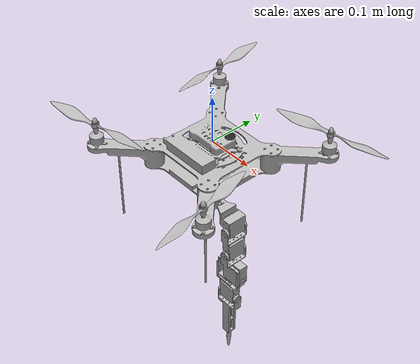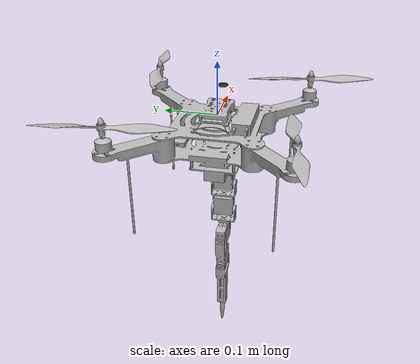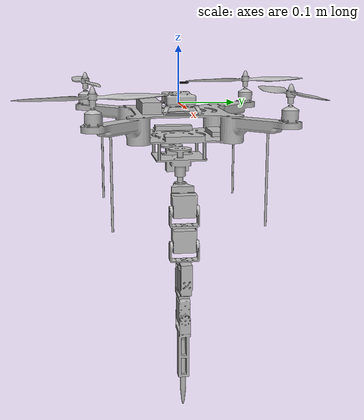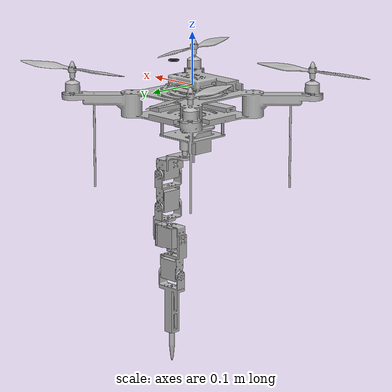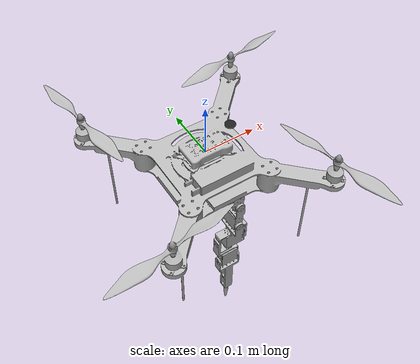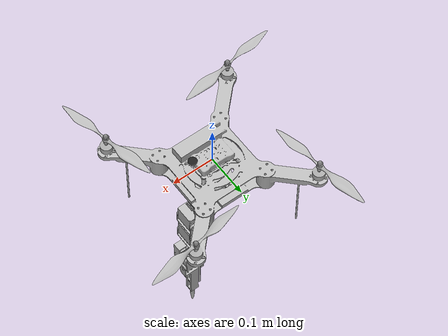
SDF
<sdf version='1.7'>
  <model name='hyper_robot4'>
    <link name='base_link'>
      <inertial>
        <pose>-0.000803 -0.007314 -0.027846 0 -0 0</pose>
        <mass>1.4</mass>
        <inertia>
          <ixx>0.0017764</ixx>
          <ixy>-3.447e-06</ixy>
          <ixz>2.1856e-07</ixz>
          <iyy>0.0019607</iyy>
          <iyz>2.7013e-07</iyz>
          <izz>0.0032525</izz>
        </inertia>
      </inertial>
      <collision name='base_link_collision'>
        <pose>0 0 -0.1 0 -0 0</pose>
        <geometry>
          <box>
            <size>0.4 0.4 0.2</size>
          </box>
        </geometry>
      </collision>
      <visual name='base_link_visual'>
        <pose>0 0 0 0 -0 0</pose>
        <geometry>
          <mesh>
            <scale>1 1 1</scale>
            <uri>model://hyper_robot4/meshes/base_link.STL</uri>
          </mesh>
        </geometry>
      </visual>
    </link>
    <joint name='/imu_joint' type='revolute'>
      <pose relative_to='base_link'>0 0 0 0 -0 0</pose>
      <parent>base_link</parent>
      <child>/imu_link</child>
      <axis>
        <xyz>0 0 1</xyz>
        <limit>
          <lower>0</lower>
          <upper>0</upper>
          <effort>0</effort>
          <velocity>0</velocity>
        </limit>
        <dynamics>
          <spring_reference>0</spring_reference>
          <spring_stiffness>0</spring_stiffness>
        </dynamics>
      </axis>
    </joint>
    <link name='/imu_link'>
      <pose relative_to='/imu_joint'>0 0 0 0 -0 0</pose>
      <inertial>
        <pose>0 0 0 0 -0 0</pose>
        <mass>0.015</mass>
        <inertia>
          <ixx>1e-05</ixx>
          <ixy>0</ixy>
          <ixz>0</ixz>
          <iyy>0</iyy>
          <iyz>0</iyz>
          <izz>0</izz>
        </inertia>
      </inertial>
    </link>
    <joint name='Joint0' type='revolute'>
      <pose relative_to='base_link'>0.02 0 -0.18065 0 -0 0</pose>
      <parent>base_link</parent>
      <child>Link1</child>
      <axis>
        <xyz>0 0 1</xyz>
        <limit>
          <lower>-1.5707</lower>
          <upper>1.5707</upper>
          <effort>1</effort>
          <velocity>1</velocity>
        </limit>
        <dynamics>
          <damping>0.01</damping>
          <friction>0</friction>
          <spring_reference>0</spring_reference>
          <spring_stiffness>0</spring_stiffness>
        </dynamics>
      </axis>
    </joint>
    <link name='Link1'>
      <pose relative_to='Joint0'>0 0 0 0 -0 0</pose>
      <inertial>
        <pose>0.03091 3.5e-05 0.029993 0 -0 0</pose>
        <mass>0.11138</mass>
        <inertia>
          <ixx>2.6005e-05</ixx>
          <ixy>-2.14e-13</ixy>
          <ixz>2.8039e-07</ixz>
          <iyy>1.7177e-05</iyy>
          <iyz>3.7239e-08</iyz>
          <izz>1.71e-05</izz>
        </inertia>
      </inertial>
      <visual name='Link1_visual'>
        <pose>0 0 0 0 -0 0</pose>
        <geometry>
          <mesh>
            <scale>1 1 1</scale>
            <uri>model://hyper_robot4/meshes/Link1.STL</uri>
          </mesh>
        </geometry>
      </visual>
    </link>
    <joint name='Joint1' type='revolute'>
      <pose relative_to='Link1'>0.0465 0 0 1.5708 1.5708 0</pose>
      <parent>Link1</parent>
      <child>Link2</child>
      <axis>
        <xyz>0 0 1</xyz>
        <limit>
          <lower>-1.5707</lower>
          <upper>1.5707</upper>
          <effort>1</effort>
          <velocity>1</velocity>
        </limit>
        <dynamics>
          <damping>0.01</damping>
          <friction>0</friction>
          <spring_reference>0</spring_reference>
          <spring_stiffness>0</spring_stiffness>
        </dynamics>
      </axis>
    </joint>
    <link name='Link2'>
      <pose relative_to='Joint1'>0 0 0 0 -0 0</pose>
      <inertial>
        <pose>0.044669 -0 -8e-06 0 -0 0</pose>
        <mass>0.089477</mass>
        <inertia>
          <ixx>1.9359e-05</ixx>
          <ixy>3.3333e-19</ixy>
          <ixz>3.7239e-08</ixz>
          <iyy>2.6927e-05</iyy>
          <iyz>3.7967e-21</iyz>
          <izz>1.3371e-05</izz>
        </inertia>
      </inertial>
      <visual name='Link2_visual'>
        <pose>0 0 0 0 -0 0</pose>
        <geometry>
          <mesh>
            <scale>1 1 1</scale>
            <uri>model://hyper_robot4/meshes/Link2.STL</uri>
          </mesh>
        </geometry>
      </visual>
    </link>
    <joint name='Joint2' type='revolute'>
      <pose relative_to='Link2'>0.06365 0 0 0 0 -1.5708</pose>
      <parent>Link2</parent>
      <child>Link3</child>
      <axis>
        <xyz>0 0 -1</xyz>
        <limit>
          <lower>-1.5707</lower>
          <upper>1.5707</upper>
          <effort>1</effort>
          <velocity>1</velocity>
        </limit>
        <dynamics>
          <damping>0.01</damping>
          <friction>0</friction>
          <spring_reference>0</spring_reference>
          <spring_stiffness>0</spring_stiffness>
        </dynamics>
      </axis>
    </joint>
    <link name='Link3'>
      <pose relative_to='Joint2'>0 0 0 0 -0 0</pose>
      <inertial>
        <pose>-0.002764 0.053128 3.4e-05 0 -0 0</pose>
        <mass>0.09428</mass>
        <inertia>
          <ixx>2.1264e-05</ixx>
          <ixy>4.9299e-07</ixy>
          <ixz>3.2007e-18</ixz>
          <iyy>1.7761e-05</iyy>
          <iyz>-5.2408e-19</iyz>
          <izz>2.4231e-05</izz>
        </inertia>
      </inertial>
      <visual name='Link3_visual'>
        <pose>0 0 0 0 -0 0</pose>
        <geometry>
          <mesh>
            <scale>1 1 1</scale>
            <uri>model://hyper_robot4/meshes/Link3.STL</uri>
          </mesh>
        </geometry>
      </visual>
    </link>
    <joint name='Joint3' type='revolute'>
      <pose relative_to='Link3'>0.00965 0.13565 0 1.57079 -1.57079 3.14159</pose>
      <parent>Link3</parent>
      <child>Link4</child>
      <axis>
        <xyz>0 0 1</xyz>
        <limit>
          <lower>-1.5707</lower>
          <upper>1.5707</upper>
          <effort>1</effort>
          <velocity>1</velocity>
        </limit>
        <dynamics>
          <damping>0.01</damping>
          <friction>0</friction>
          <spring_reference>0</spring_reference>
          <spring_stiffness>0</spring_stiffness>
        </dynamics>
      </axis>
    </joint>
    <link name='Link4'>
      <pose relative_to='Joint3'>0 0 0 0 -0 0</pose>
      <inertial>
        <pose>0 0.003126 -0.024086 0 -0 0</pose>
        <mass>0.09428</mass>
        <inertia>
          <ixx>2.8558e-05</ixx>
          <ixy>-5.4321e-20</ixy>
          <ixz>1.1994e-18</ixz>
          <iyy>1.7996e-05</iyy>
          <iyz>4.1851e-07</iyz>
          <izz>1.6701e-05</izz>
        </inertia>
      </inertial>
      <visual name='Link4_visual'>
        <pose>0 0 0 0 -0 0</pose>
        <geometry>
          <mesh>
            <scale>1 1 1</scale>
            <uri>model://hyper_robot4/meshes/Link4.STL</uri>
          </mesh>
        </geometry>
      </visual>
    </link>
    <joint name='Joint4' type='revolute'>
      <pose relative_to='Link4'>0 0 0 1.5708 -0 0</pose>
      <parent>Link4</parent>
      <child>Link5</child>
      <axis>
        <xyz>0 0 1</xyz>
        <limit>
          <lower>-1.5707</lower>
          <upper>1.5707</upper>
          <effort>1</effort>
          <velocity>1</velocity>
        </limit>
        <dynamics>
          <damping>0.01</damping>
          <friction>0</friction>
          <spring_reference>0</spring_reference>
          <spring_stiffness>0</spring_stiffness>
        </dynamics>
      </axis>
    </joint>
    <link name='Link5'>
      <pose relative_to='Joint4'>0 0 0 0 -0 0</pose>
      <inertial>
        <pose>-0 0.057083 6.6e-05 0 -0 0</pose>
        <mass>0.0488669</mass>
        <inertia>
          <ixx>7.18439e-05</ixx>
          <ixy>2.90795e-11</ixy>
          <ixz>1.53411e-13</ixz>
          <iyy>8.24828e-06</iyy>
          <iyz>4.17585e-08</iyz>
          <izz>6.70449e-05</izz>
        </inertia>
      </inertial>
      <visual name='Link5_visual'>
        <pose>0 0 0 0 -0 0</pose>
        <geometry>
          <mesh>
            <scale>1 1 1</scale>
            <uri>model://hyper_robot4/meshes/Link5.STL</uri>
          </mesh>
        </geometry>
      </visual>
      <visual name='Link5_fixed_joint_lump__Link6_visual_1'>
        <pose>0 0.177385 0 -1.5708 0 0</pose>
        <geometry>
          <mesh>
            <scale>1 1 1</scale>
            <uri>model://hyper_robot4/meshes/Link6.STL</uri>
          </mesh>
        </geometry>
      </visual>
    </link>
    <joint name='rotor_0_joint' type='revolute'>
      <pose relative_to='base_link'>0.15778 -0.15778 0.022914 0 -0 0</pose>
      <parent>base_link</parent>
      <child>rotor_0</child>
      <axis>
        <xyz>0 0 1</xyz>
        <limit>
          <lower>-1e+16</lower>
          <upper>1e+16</upper>
        </limit>
        <dynamics>
          <spring_reference>0</spring_reference>
          <spring_stiffness>0</spring_stiffness>
        </dynamics>
      </axis>
    </joint>
    <link name='rotor_0'>
      <pose relative_to='rotor_0_joint'>0 0 0 0 -0 0</pose>
      <inertial>
        <pose>0 -0.004483 -0 -1.5708 0 1.7863</pose>
        <mass>0.022944</mass>
        <inertia>
          <ixx>8.117e-07</ixx>
          <ixy>-1.5304e-17</ixy>
          <ixz>2.5395e-06</ixz>
          <iyy>9.7213e-05</iyy>
          <iyz>2.8509e-18</iyz>
          <izz>9.6561e-05</izz>
        </inertia>
      </inertial>
      <visual name='rotor_0_visual'>
        <pose>0 0 0 -1.5708 0 1.7863</pose>
        <geometry>
          <mesh>
            <scale>1 1 1</scale>
            <uri>model://hyper_robot4/meshes/rotor0.STL</uri>
          </mesh>
        </geometry>
      </visual>
    </link>
    <joint name='rotor_1_joint' type='revolute'>
      <pose relative_to='base_link'>-0.15778 0.15778 0.022914 0 -0 0</pose>
      <parent>base_link</parent>
      <child>rotor_1</child>
      <axis>
        <xyz>0 0 1</xyz>
        <limit>
          <lower>-1e+16</lower>
          <upper>1e+16</upper>
        </limit>
        <dynamics>
          <spring_reference>0</spring_reference>
          <spring_stiffness>0</spring_stiffness>
        </dynamics>
      </axis>
    </joint>
    <link name='rotor_1'>
      <pose relative_to='rotor_1_joint'>0 0 0 0 -0 0</pose>
      <inertial>
        <pose>-0 -0.004483 0 -1.5708 -0 1.7179</pose>
        <mass>0.022944</mass>
        <inertia>
          <ixx>8.1171e-07</ixx>
          <ixy>4.1874e-14</ixy>
          <ixz>2.5395e-06</ixz>
          <iyy>9.7213e-05</iyy>
          <iyz>-1.6511e-14</iyz>
          <izz>9.6562e-05</izz>
        </inertia>
      </inertial>
      <visual name='rotor_1_visual'>
        <pose>0 0 0 -1.5708 -0 1.7179</pose>
        <geometry>
          <mesh>
            <scale>1 1 1</scale>
            <uri>model://hyper_robot4/meshes/rotor1.STL</uri>
          </mesh>
        </geometry>
      </visual>
    </link>
    <joint name='rotor_2_joint' type='revolute'>
      <pose relative_to='base_link'>0.15778 0.15778 0.0245 0 -0 0</pose>
      <parent>base_link</parent>
      <child>rotor_2</child>
      <axis>
        <xyz>0 0 1</xyz>
        <limit>
          <lower>-1e+16</lower>
          <upper>1e+16</upper>
        </limit>
        <dynamics>
          <spring_reference>0</spring_reference>
          <spring_stiffness>0</spring_stiffness>
        </dynamics>
      </axis>
    </joint>
    <link name='rotor_2'>
      <pose relative_to='rotor_2_joint'>0 0 0 0 -0 0</pose>
      <inertial>
        <pose>0 0.0061 0 1.5708 0 0.18169</pose>
        <mass>0.022896</mass>
        <inertia>
          <ixx>8.0904e-07</ixx>
          <ixy>5.4318e-14</ixy>
          <ixz>-2.5351e-06</ixz>
          <iyy>9.711e-05</iyy>
          <iyz>2.2555e-14</iyz>
          <izz>9.646e-05</izz>
        </inertia>
      </inertial>
      <visual name='rotor_2_visual'>
        <pose>0 0 0 1.5708 0 0.18169</pose>
        <geometry>
          <mesh>
            <scale>1 1 1</scale>
            <uri>model://hyper_robot4/meshes/rotor2.STL</uri>
          </mesh>
        </geometry>
      </visual>
    </link>
    <joint name='rotor_3_joint' type='revolute'>
      <pose relative_to='base_link'>-0.15778 -0.15778 0.02285 0 -0 0</pose>
      <parent>base_link</parent>
      <child>rotor_3</child>
      <axis>
        <xyz>0 0 1</xyz>
        <limit>
          <lower>-1e+16</lower>
          <upper>1e+16</upper>
        </limit>
        <dynamics>
          <spring_reference>0</spring_reference>
          <spring_stiffness>0</spring_stiffness>
        </dynamics>
      </axis>
    </joint>
    <link name='rotor_3'>
      <pose relative_to='rotor_3_joint'>0 0 0 0 -0 0</pose>
      <inertial>
        <pose>0 -0.00455 0 -1.5708 -0 -2.9802</pose>
        <mass>0.022896</mass>
        <inertia>
          <ixx>8.0904e-07</ixx>
          <ixy>6.176e-13</ixy>
          <ixz>-2.5351e-06</ixz>
          <iyy>9.7111e-05</iyy>
          <iyz>6.4653e-14</iyz>
          <izz>9.6461e-05</izz>
        </inertia>
      </inertial>
      <visual name='rotor_3_visual'>
        <pose>0 0 0 -1.5708 -0 -2.9802</pose>
        <geometry>
          <mesh>
            <scale>1 1 1</scale>
            <uri>model://hyper_robot4/meshes/rotor3.STL</uri>
          </mesh>
        </geometry>
      </visual>
    </link>
    <static>0</static>
    <plugin name='rosbag' filename='libgazebo_multirotor_base_plugin.so'>
      <robotNamespace/>
      <linkName>base_link</linkName>
      <rotorVelocitySlowdownSim>10</rotorVelocitySlowdownSim>
    </plugin>
    <plugin name='front_right_motor_model' filename='libgazebo_motor_model.so'>
      <robotNamespace/>
      <jointName>rotor_0_joint</jointName>
      <linkName>rotor_0</linkName>
      <turningDirection>ccw</turningDirection>
      <timeConstantUp>0.0125</timeConstantUp>
      <timeConstantDown>0.025</timeConstantDown>
      <maxRotVelocity>1100</maxRotVelocity>
      <motorConstant>10.26e-06</motorConstant>
      <momentConstant>0.05</momentConstant>
      <commandSubTopic>/gazebo/command/motor_speed</commandSubTopic>
      <motorNumber>0</motorNumber>
      <rotorDragCoefficient>0.000175</rotorDragCoefficient>
      <rollingMomentCoefficient>1e-06</rollingMomentCoefficient>
      <motorSpeedPubTopic>/motor_speed/0</motorSpeedPubTopic>
      <rotorVelocitySlowdownSim>10</rotorVelocitySlowdownSim>
    </plugin>
    <plugin name='back_left_motor_model' filename='libgazebo_motor_model.so'>
      <robotNamespace/>
      <jointName>rotor_1_joint</jointName>
      <linkName>rotor_1</linkName>
      <turningDirection>ccw</turningDirection>
      <timeConstantUp>0.0125</timeConstantUp>
      <timeConstantDown>0.025</timeConstantDown>
      <maxRotVelocity>1100</maxRotVelocity>
      <motorConstant>10.26e-06</motorConstant>
      <momentConstant>0.05</momentConstant>
      <commandSubTopic>/gazebo/command/motor_speed</commandSubTopic>
      <motorNumber>1</motorNumber>
      <rotorDragCoefficient>0.000175</rotorDragCoefficient>
      <rollingMomentCoefficient>1e-06</rollingMomentCoefficient>
      <motorSpeedPubTopic>/motor_speed/1</motorSpeedPubTopic>
      <rotorVelocitySlowdownSim>10</rotorVelocitySlowdownSim>
    </plugin>
    <plugin name='front_left_motor_model' filename='libgazebo_motor_model.so'>
      <robotNamespace/>
      <jointName>rotor_2_joint</jointName>
      <linkName>rotor_2</linkName>
      <turningDirection>cw</turningDirection>
      <timeConstantUp>0.0125</timeConstantUp>
      <timeConstantDown>0.025</timeConstantDown>
      <maxRotVelocity>1100</maxRotVelocity>
      <motorConstant>10.26e-06</motorConstant>
      <momentConstant>0.05</momentConstant>
      <commandSubTopic>/gazebo/command/motor_speed</commandSubTopic>
      <motorNumber>2</motorNumber>
      <rotorDragCoefficient>0.000175</rotorDragCoefficient>
      <rollingMomentCoefficient>1e-06</rollingMomentCoefficient>
      <motorSpeedPubTopic>/motor_speed/2</motorSpeedPubTopic>
      <rotorVelocitySlowdownSim>10</rotorVelocitySlowdownSim>
    </plugin>
    <plugin name='back_right_motor_model' filename='libgazebo_motor_model.so'>
      <robotNamespace/>
      <jointName>rotor_3_joint</jointName>
      <linkName>rotor_3</linkName>
      <turningDirection>cw</turningDirection>
      <timeConstantUp>0.0125</timeConstantUp>
      <timeConstantDown>0.025</timeConstantDown>
      <maxRotVelocity>1100</maxRotVelocity>
      <motorConstant>10.26e-06</motorConstant>
      <momentConstant>0.05</momentConstant>
      <commandSubTopic>/gazebo/command/motor_speed</commandSubTopic>
      <motorNumber>3</motorNumber>
      <rotorDragCoefficient>0.000175</rotorDragCoefficient>
      <rollingMomentCoefficient>1e-06</rollingMomentCoefficient>
      <motorSpeedPubTopic>/motor_speed/3</motorSpeedPubTopic>
      <rotorVelocitySlowdownSim>10</rotorVelocitySlowdownSim>
    </plugin>
    <frame name='gps0::__model__' attached_to='gps0::link'>
      <pose relative_to='__model__'>0.05 0 0.04 0 -0 0</pose>
    </frame>
    <link name='gps0::link'>
      <pose relative_to='gps0::__model__'>0 0 0 0 -0 0</pose>
      <inertial>
        <pose>0 0 0 0 -0 0</pose>
        <mass>0.015</mass>
        <inertia>
          <ixx>1e-05</ixx>
          <ixy>0</ixy>
          <ixz>0</ixz>
          <iyy>1e-05</iyy>
          <iyz>0</iyz>
          <izz>1e-05</izz>
        </inertia>
      </inertial>
      <visual name='visual'>
        <geometry>
          <cylinder>
            <radius>0.01</radius>
            <length>0.002</length>
          </cylinder>
        </geometry>
        <material>
          <script>
            <name>Gazebo/Black</name>
            <uri>__default__</uri>
          </script>
        </material>
      </visual>
      <sensor name='gps' type='gps'>
        <pose>0 0 0 0 -0 0</pose>
        <update_rate>5</update_rate>
        <always_on>1</always_on>
        <visualize>0</visualize>
        <plugin name='gps_plugin' filename='libgazebo_gps_plugin.so'>
          <robotNamespace/>
          <gpsNoise>1</gpsNoise>
          <gpsXYRandomWalk>2.0</gpsXYRandomWalk>
          <gpsZRandomWalk>4.0</gpsZRandomWalk>
          <gpsXYNoiseDensity>2.0e-4</gpsXYNoiseDensity>
          <gpsZNoiseDensity>4.0e-4</gpsZNoiseDensity>
          <gpsVXYNoiseDensity>0.2</gpsVXYNoiseDensity>
          <gpsVZNoiseDensity>0.4</gpsVZNoiseDensity>
        </plugin>
      </sensor>
    </link>
    <joint name='gps0_joint' type='fixed'>
      <child>gps0::link</child>
      <parent>base_link</parent>
    </joint>
    <plugin name='groundtruth_plugin' filename='libgazebo_groundtruth_plugin.so'>
      <robotNamespace/>
    </plugin>
    <plugin name='magnetometer_plugin' filename='libgazebo_magnetometer_plugin.so'>
      <robotNamespace/>
      <pubRate>100</pubRate>
      <noiseDensity>0.0004</noiseDensity>
      <randomWalk>6.4e-06</randomWalk>
      <biasCorrelationTime>600</biasCorrelationTime>
      <magTopic>/mag</magTopic>
    </plugin>
    <plugin name='barometer_plugin' filename='libgazebo_barometer_plugin.so'>
      <robotNamespace/>
      <pubRate>50</pubRate>
      <baroTopic>/baro</baroTopic>
      <baroDriftPaPerSec>0</baroDriftPaPerSec>
    </plugin>
    <plugin name='mavlink_interface' filename='libgazebo_mavlink_interface.so'>
      <robotNamespace/>
      <imuSubTopic>/imu</imuSubTopic>
      <magSubTopic>/mag</magSubTopic>
      <baroSubTopic>/baro</baroSubTopic>
      <mavlink_addr>INADDR_ANY</mavlink_addr>
      <mavlink_tcp_port>4560</mavlink_tcp_port>
      <mavlink_udp_port>14560</mavlink_udp_port>
      <serialEnabled>0</serialEnabled>
      <serialDevice>/dev/ttyACM0</serialDevice>
      <baudRate>921600</baudRate>
      <qgc_addr>INADDR_ANY</qgc_addr>
      <qgc_udp_port>14550</qgc_udp_port>
      <sdk_addr>INADDR_ANY</sdk_addr>
      <sdk_udp_port>14540</sdk_udp_port>
      <hil_mode>0</hil_mode>
      <hil_state_level>0</hil_state_level>
      <send_vision_estimation>0</send_vision_estimation>
      <send_odometry>1</send_odometry>
      <enable_lockstep>1</enable_lockstep>
      <use_tcp>1</use_tcp>
      <motorSpeedCommandPubTopic>/gazebo/command/motor_speed</motorSpeedCommandPubTopic>
      <control_channels>
        <channel name='rotor1'>
          <input_index>0</input_index>
          <input_offset>0</input_offset>
          <input_scaling>1000</input_scaling>
          <zero_position_disarmed>0</zero_position_disarmed>
          <zero_position_armed>100</zero_position_armed>
          <joint_control_type>velocity</joint_control_type>
        </channel>
        <channel name='rotor2'>
          <input_index>1</input_index>
          <input_offset>0</input_offset>
          <input_scaling>1000</input_scaling>
          <zero_position_disarmed>0</zero_position_disarmed>
          <zero_position_armed>100</zero_position_armed>
          <joint_control_type>velocity</joint_control_type>
        </channel>
        <channel name='rotor3'>
          <input_index>2</input_index>
          <input_offset>0</input_offset>
          <input_scaling>1000</input_scaling>
          <zero_position_disarmed>0</zero_position_disarmed>
          <zero_position_armed>100</zero_position_armed>
          <joint_control_type>velocity</joint_control_type>
        </channel>
        <channel name='rotor4'>
          <input_index>3</input_index>
          <input_offset>0</input_offset>
          <input_scaling>1000</input_scaling>
          <zero_position_disarmed>0</zero_position_disarmed>
          <zero_position_armed>100</zero_position_armed>
          <joint_control_type>velocity</joint_control_type>
        </channel>
        <channel name='rotor5'>
          <input_index>4</input_index>
          <input_offset>1</input_offset>
          <input_scaling>324.6</input_scaling>
          <zero_position_disarmed>0</zero_position_disarmed>
          <zero_position_armed>0</zero_position_armed>
          <joint_control_type>velocity</joint_control_type>
          <joint_control_pid>
            <p>0.1</p>
            <i>0</i>
            <d>0</d>
            <iMax>0.0</iMax>
            <iMin>0.0</iMin>
            <cmdMax>2</cmdMax>
            <cmdMin>-2</cmdMin>
          </joint_control_pid>
          <joint_name>zephyr_delta_wing::propeller_joint</joint_name>
        </channel>
        <channel name='rotor6'>
          <input_index>5</input_index>
          <input_offset>0</input_offset>
          <input_scaling>0.524</input_scaling>
          <zero_position_disarmed>0</zero_position_disarmed>
          <zero_position_armed>0</zero_position_armed>
          <joint_control_type>position</joint_control_type>
          <joint_name>zephyr_delta_wing::flap_left_joint</joint_name>
          <joint_control_pid>
            <p>10.0</p>
            <i>0</i>
            <d>0</d>
            <iMax>0</iMax>
            <iMin>0</iMin>
            <cmdMax>20</cmdMax>
            <cmdMin>-20</cmdMin>
          </joint_control_pid>
        </channel>
        <channel name='rotor7'>
          <input_index>6</input_index>
          <input_offset>0</input_offset>
          <input_scaling>0.524</input_scaling>
          <zero_position_disarmed>0</zero_position_disarmed>
          <zero_position_armed>0</zero_position_armed>
          <joint_control_type>position</joint_control_type>
          <joint_name>zephyr_delta_wing::flap_right_joint</joint_name>
          <joint_control_pid>
            <p>10.0</p>
            <i>0</i>
            <d>0</d>
            <iMax>0</iMax>
            <iMin>0</iMin>
            <cmdMax>20</cmdMax>
            <cmdMin>-20</cmdMin>
          </joint_control_pid>
        </channel>
        <channel name='rotor8'>
          <input_index>7</input_index>
          <input_offset>0</input_offset>
          <input_scaling>0.524</input_scaling>
          <zero_position_disarmed>0</zero_position_disarmed>
          <zero_position_armed>0</zero_position_armed>
          <joint_control_type>position</joint_control_type>
        </channel>
      </control_channels>
    </plugin>
    <plugin name='rotors_gazebo_imu_plugin' filename='libgazebo_imu_plugin.so'>
      <robotNamespace/>
      <linkName>/imu_link</linkName>
      <imuTopic>/imu</imuTopic>
      <gyroscopeNoiseDensity>0.00018665</gyroscopeNoiseDensity>
      <gyroscopeRandomWalk>3.8785e-05</gyroscopeRandomWalk>
      <gyroscopeBiasCorrelationTime>1000.0</gyroscopeBiasCorrelationTime>
      <gyroscopeTurnOnBiasSigma>0.0087</gyroscopeTurnOnBiasSigma>
      <accelerometerNoiseDensity>0.00186</accelerometerNoiseDensity>
      <accelerometerRandomWalk>0.006</accelerometerRandomWalk>
      <accelerometerBiasCorrelationTime>300.0</accelerometerBiasCorrelationTime>
      <accelerometerTurnOnBiasSigma>0.196</accelerometerTurnOnBiasSigma>
    </plugin>
    <plugin name='gazebo_ros2_control' filename='libgazebo_ros2_control.so'>
      <parameters>$(find gazebo_robot)/config/hyper_robot4_position.yaml</parameters>
    </plugin>
    <frame name='Joint5' attached_to='Link5'>
      <pose>0 0.177385 0 -1.5708 0 0</pose>
    </frame>
    <frame name='Link6' attached_to='Joint5'/>
  </model>
</sdf>
